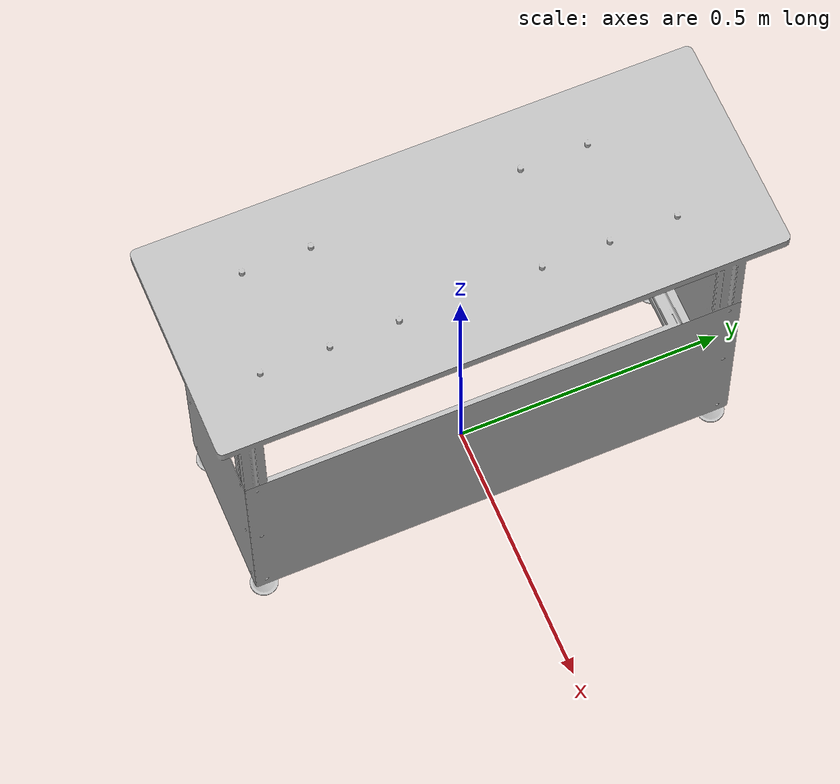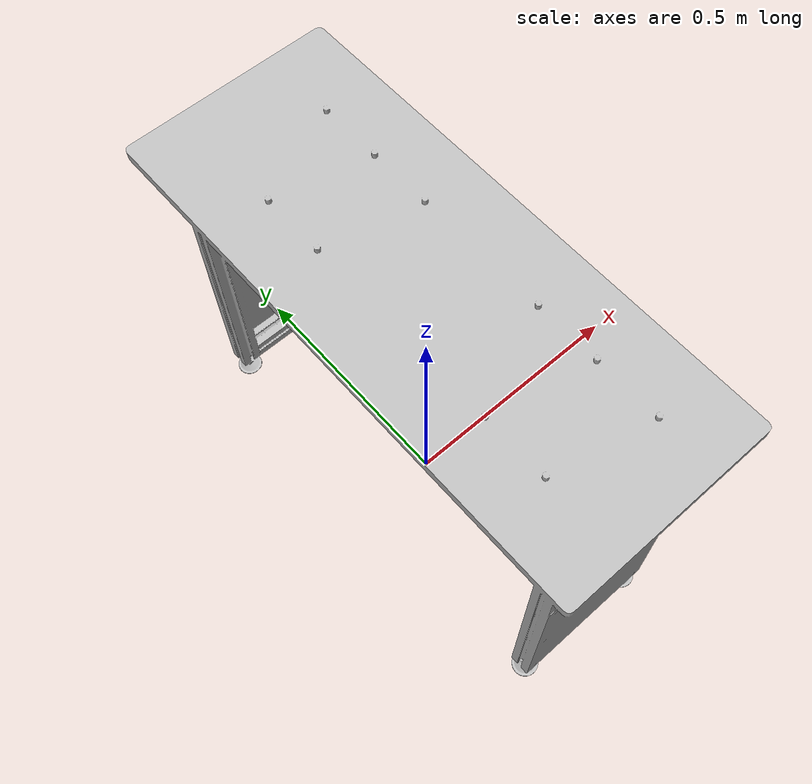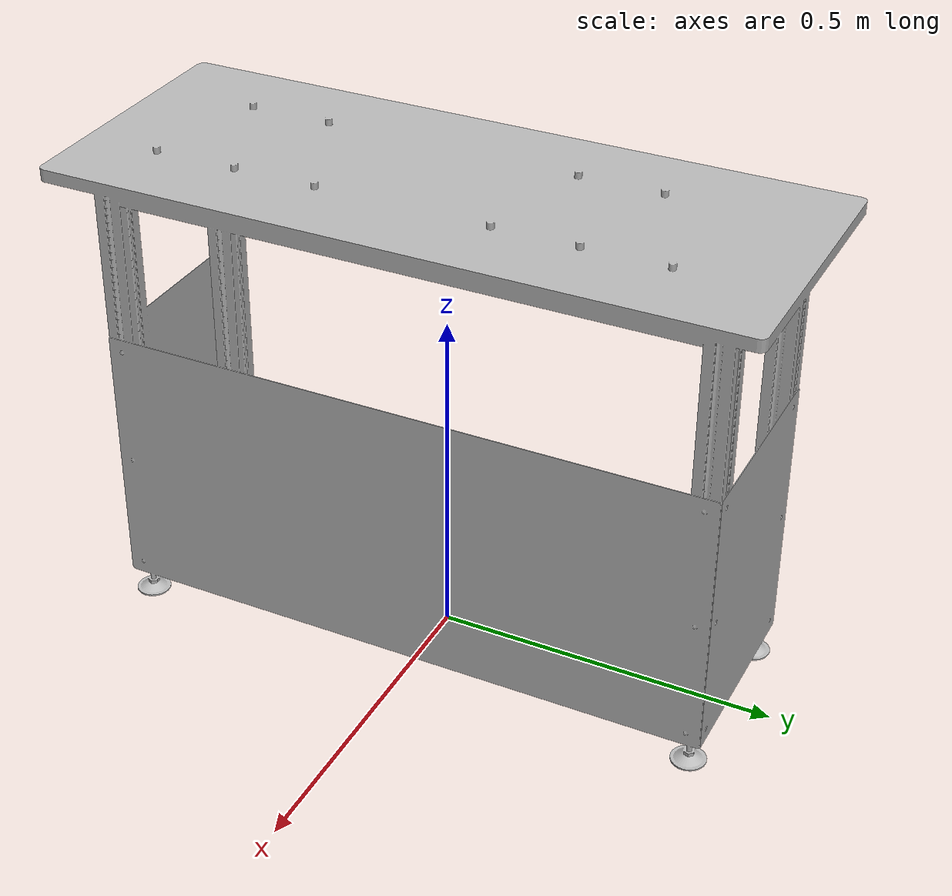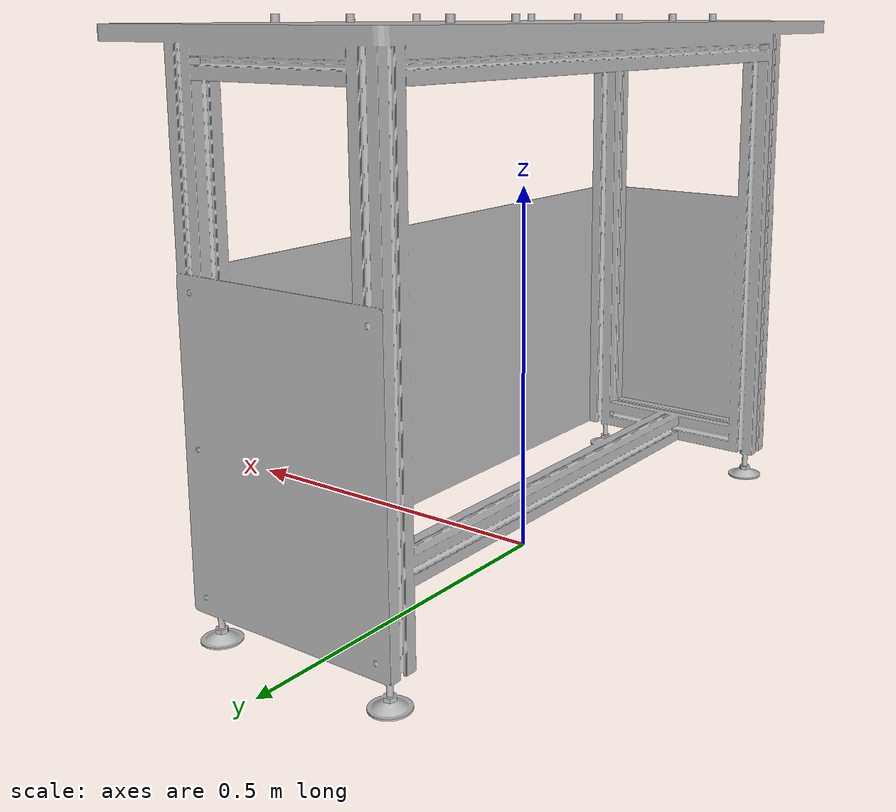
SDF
<?xml version='1.0'?>
<sdf version='1.6'>
  <model name='material_desk'>
    <link name='material_desk_base_link'>
      <pose frame=''>0 0 0 0 -0 0</pose>
      <inertial>
        <pose frame=''>0.004689 -0.000356 0.57686 0 -0 0</pose>
        <mass>11.835</mass>
        <inertia>
          <ixx>0.78662</ixx>
          <ixy>-8.1928e-14</ixy>
          <ixz>-7.1511e-14</ixz>
          <iyy>0.17062</iyy>
          <iyz>7.1759e-13</iyz>
          <izz>0.81737</izz>
        </inertia>
      </inertial>
      <self_collide>0</self_collide>
      <enable_wind>0</enable_wind>
      <kinematic>0</kinematic>
      <visual name='material_desk_base_link_visual'>
        <pose frame=''>0 0 0 0 -0 0</pose>
        <geometry>
          <mesh>
            <scale>1 1 1</scale>
            <uri>model://material_desk/meshes/material_desk_base_link.STL</uri>
          </mesh>
        </geometry>
        <transparency>0</transparency>
        <cast_shadows>1</cast_shadows>
      </visual>
      <collision name='material_desk_base_link_collision'>
        <laser_retro>0</laser_retro>
        <max_contacts>10</max_contacts>
        <pose frame=''>0 0 0 0 -0 0</pose>
        <geometry>
          <mesh>
            <uri>model://material_desk/meshes/material_desk_base_link.STL</uri>
            <scale>1 1 1</scale>
          </mesh>
        </geometry>
        <surface>
          <friction>
            <ode>
              <mu>1</mu>
              <mu2>1</mu2>
              <fdir1>0 0 0</fdir1>
              <slip1>0</slip1>
              <slip2>0</slip2>
            </ode>
            <torsional>
              <coefficient>1</coefficient>
              <patch_radius>0</patch_radius>
              <surface_radius>0</surface_radius>
              <use_patch_radius>1</use_patch_radius>
              <ode>
                <slip>0</slip>
              </ode>
            </torsional>
          </friction>
          <bounce>
            <restitution_coefficient>0</restitution_coefficient>
            <threshold>1e+06</threshold>
          </bounce>
          <contact>
            <collide_without_contact>0</collide_without_contact>
            <collide_without_contact_bitmask>1</collide_without_contact_bitmask>
            <collide_bitmask>1</collide_bitmask>
            <ode>
              <soft_cfm>0</soft_cfm>
              <soft_erp>0.2</soft_erp>
              <kp>1e+13</kp>
              <kd>1</kd>
              <max_vel>0.01</max_vel>
              <min_depth>0.001</min_depth>
            </ode>
            <bullet>
              <split_impulse>1</split_impulse>
              <split_impulse_penetration_threshold>-0.01</split_impulse_penetration_threshold>
              <soft_cfm>0</soft_cfm>
              <soft_erp>0.2</soft_erp>
              <kp>1e+13</kp>
              <kd>1</kd>
            </bullet>
          </contact>
        </surface>
      </collision>
    </link>
    <static>0</static>
    <allow_auto_disable>1</allow_auto_disable>
  </model>
</sdf>
